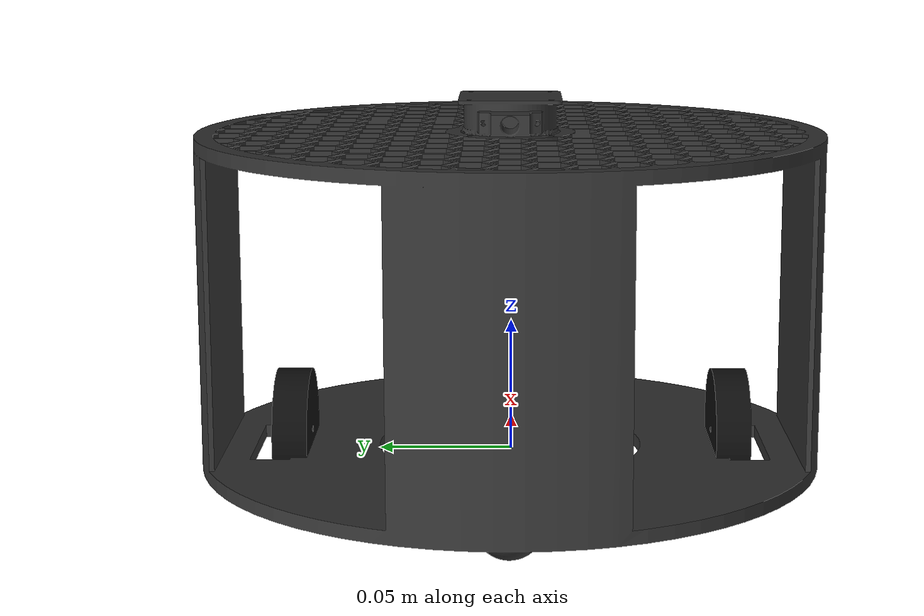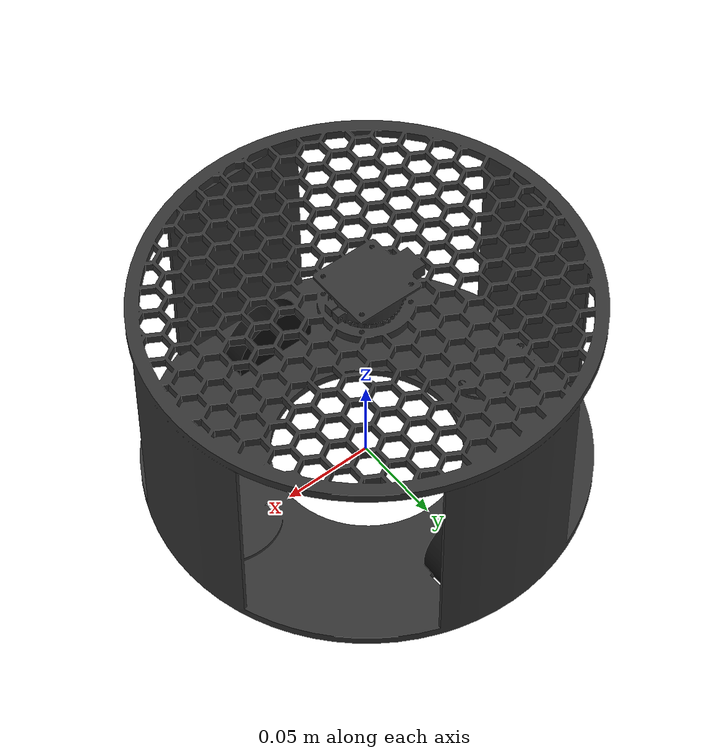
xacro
<?xml version="1.0"?>
<robot name="raf4" xmlns:xacro="http://www.ros.org/wiki/xacro">

  <xacro:property name="chassis_yaw" value="${pi/2}"/>

  <!-- ===================== Posição das rodas motrizes ===================== -->
  <!-- Assume-se que estes valores são o CENTRO da roda (o cavado no chassis
       vai de x≈50 a x≈116 mm e o seu ponto médio bate com ≈83 mm). -->
  <xacro:property name="right_wheel_x" value="0.00021"/>
  <xacro:property name="right_wheel_y" value="-0.08316"/>
  <xacro:property name="right_wheel_z" value="0.00720"/>

  <xacro:property name="left_wheel_x" value="0.00030"/>
  <xacro:property name="left_wheel_y" value="0.08279"/>
  <xacro:property name="left_wheel_z" value="0.00720"/>

  <!-- Distância entre rodas: usada também pelo DiffDrive (não hardcoded) -->
  <xacro:property name="wheel_separation" value="${left_wheel_y - right_wheel_y}"/>

  <xacro:property name="wheel_radius" value="0.0235"/>
  <xacro:property name="wheel_width" value="0.013"/>
  <xacro:property name="wheel_visual_shift" value="${wheel_width/2}"/>
  <xacro:property name="wheel_mass" value="0.05"/>  <!-- PESA A RODA REAL -->

  <!-- Rodas-guia: esferas perfeitas (raio 12.5 mm) na malha do chassis -->
  <xacro:property name="caster_radius" value="0.0125"/>
  <xacro:property name="caster_z" value="-0.00378"/>

  <!-- Massa do robô. 1.0 kg é um PLACEHOLDER: PESA O ROBÔ REAL. A inércia e
       o centro de massa abaixo vêm da malha (densidade uniforme) e escalam
       com esta massa. -->
  <xacro:property name="base_mass" value="1.0"/>

  <link name="base_link">
    <visual>
      <origin xyz="0 0 0" rpy="0 0 ${chassis_yaw}"/>
      <geometry>
        <mesh filename="package://raf4_description/meshes/raf4.stl" scale="0.001 0.001 0.001"/>
      </geometry>
      <material name="chassis_color">
        <color rgba="0.2 0.2 0.2 1"/>
      </material>
    </visual>
    <!-- Colisão do corpo = caixa (a malha tem 25k triângulos). O fundo do
         corpo está a z=-2.8 mm, logo NÃO toca no chão: quem toca são as
         rodas e as guias. -->
    <collision>
      <origin xyz="-0.000305 0.00029 0.0663" rpy="0 0 0"/>
      <geometry>
        <box size="0.23379 0.23412 0.13817"/>
      </geometry>
    </collision>
    <inertial>
      <origin xyz="-0.00035 0.00033 0.0495" rpy="0 0 0"/>
      <mass value="${base_mass}"/>
      <inertia ixx="${base_mass * 0.00728}" ixy="0.0" ixz="0.0"
               iyy="${base_mass * 0.00753}" iyz="0.0"
               izz="${base_mass * 0.01014}"/>
    </inertial>
  </link>

  <!-- ===================== Rodas-guia (sem atrito) ===================== -->
  <xacro:macro name="caster" params="name x y">
    <link name="${name}_link">
      <collision>
        <geometry>
          <sphere radius="${caster_radius}"/>
        </geometry>
      </collision>
    </link>
    <joint name="${name}_joint" type="fixed">
      <parent link="base_link"/>
      <child link="${name}_link"/>
      <origin xyz="${x} ${y} ${caster_z}" rpy="0 0 0"/>
    </joint>
    <!-- esfera "de bola": quase sem atrito, senão trava o robô -->
    <gazebo reference="${name}_link">
      <mu1>0.01</mu1>
      <mu2>0.01</mu2>
    </gazebo>
  </xacro:macro>

  <xacro:caster name="caster_front" x="0.08321"  y="0.00035"/>
  <xacro:caster name="caster_rear"  x="-0.08379" y="0.00035"/>

  <!-- ===================== Macro da roda motriz ===================== -->
  <!-- visual_yaw/visual_dy: a malha ocupa y∈[-13,0]; a roda direita já
       aponta para fora (-Y), a esquerda roda-se 180°. -->
  <xacro:macro name="wheel" params="prefix x y z visual_yaw visual_dy">
    <link name="${prefix}_wheel_link">
      <visual>
        <origin xyz="0 ${visual_dy} 0" rpy="0 0 ${visual_yaw}"/>
        <geometry>
          <mesh filename="package://raf4_description/meshes/roda.stl" scale="0.001 0.001 0.001"/>
        </geometry>
        <material name="wheel_color">
          <color rgba="0.05 0.05 0.05 1"/>
        </material>
      </visual>
      <collision>
        <!-- Cilindro com eixo em Y, centrado no joint -->
        <origin xyz="0 0 0" rpy="${pi/2} 0 0"/>
        <geometry>
          <cylinder radius="${wheel_radius}" length="${wheel_width}"/>
        </geometry>
      </collision>
      <inertial>
        <!-- cilindro maciço com eixo em Y -->
        <mass value="${wheel_mass}"/>
        <inertia ixx="${wheel_mass * (3*wheel_radius*wheel_radius + wheel_width*wheel_width) / 12}" ixy="0.0" ixz="0.0"
                 iyy="${0.5 * wheel_mass * wheel_radius * wheel_radius}" iyz="0.0"
                 izz="${wheel_mass * (3*wheel_radius*wheel_radius + wheel_width*wheel_width) / 12}"/>
      </inertial>
    </link>

    <joint name="${prefix}_wheel_joint" type="continuous">
      <parent link="base_link"/>
      <child link="${prefix}_wheel_link"/>
      <origin xyz="${x} ${y} ${z}" rpy="0 0 0"/>
      <!-- Eixo lateral (Y): rotação positiva das duas rodas => avança em +X -->
      <axis xyz="0 1 0"/>
    </joint>

    <gazebo reference="${prefix}_wheel_link">
      <mu1>1.0</mu1>
      <mu2>1.0</mu2>
    </gazebo>
  </xacro:macro>

  <xacro:wheel prefix="right" x="${right_wheel_x}" y="${right_wheel_y}" z="${right_wheel_z}"
               visual_yaw="0" visual_dy="${wheel_visual_shift}"/>
  <xacro:wheel prefix="left"  x="${left_wheel_x}"  y="${left_wheel_y}"  z="${left_wheel_z}"
               visual_yaw="${pi}" visual_dy="${-wheel_visual_shift}"/>

  <!-- Link do IMU (sem geometria visual, é só um referencial). Mesmo
       referencial que base_link: X à frente, Y esquerda, Z cima. -->
  <link name="imu_link"/>

  <joint name="imu_joint" type="fixed">
    <parent link="base_link"/>
    <child link="imu_link"/>
    <origin xyz="0 0 0.05" rpy="0 0 0"/>
  </joint>

  <gazebo reference="imu_link">
    <sensor name="imu_sensor" type="imu">
      <always_on>true</always_on>
      <update_rate>100</update_rate>  <!-- accel/gyro a 100 Hz em modo NDOF -->
      <topic>imu/data</topic>
      <gz_frame_id>imu_link</gz_frame_id>
      <imu>
        <angular_velocity>
          <!-- Gyro BW=32Hz: 0.014 °/s/√Hz * √32 ≈ 0.079°/s = 0.0014 rad/s.
               Zero-rate offset típico ±1°/s = 0.0175 rad/s (datasheet). -->
          <x><noise type="gaussian"><mean>0.0</mean><stddev>0.0014</stddev><bias_mean>0.0</bias_mean><bias_stddev>0.0175</bias_stddev></noise></x>
          <y><noise type="gaussian"><mean>0.0</mean><stddev>0.0014</stddev><bias_mean>0.0</bias_mean><bias_stddev>0.0175</bias_stddev></noise></y>
          <z><noise type="gaussian"><mean>0.0</mean><stddev>0.0014</stddev><bias_mean>0.0</bias_mean><bias_stddev>0.0175</bias_stddev></noise></z>
        </angular_velocity>
        <linear_acceleration>
          <x><noise type="gaussian"><mean>0.0</mean><stddev>0.0116</stddev><bias_mean>0.0</bias_mean><bias_stddev>0.1</bias_stddev></noise></x>
          <y><noise type="gaussian"><mean>0.0</mean><stddev>0.0116</stddev><bias_mean>0.0</bias_mean><bias_stddev>0.1</bias_stddev></noise></y>
          <z><noise type="gaussian"><mean>0.0</mean><stddev>0.0116</stddev><bias_mean>0.0</bias_mean><bias_stddev>0.1</bias_stddev></noise></z>
        </linear_acceleration>
      </imu>
    </sensor>

    <!-- Magnetómetro a 20 Hz em NDOF. Ruído "Regular preset": 0.6 µT.
         Zero-B offset: ±40 µT em bruto, ±2 µT após calibração em fusão
         (datasheet) -> bias_stddev = 2 µT. -->
    <sensor name="mag_sensor" type="magnetometer">
      <always_on>true</always_on>
      <update_rate>20</update_rate>
      <topic>imu/mag</topic>
      <gz_frame_id>imu_link</gz_frame_id>
      <magnetometer>
        <x><noise type="gaussian"><mean>0.0</mean><stddev>0.0000006</stddev><bias_mean>0.0</bias_mean><bias_stddev>0.000002</bias_stddev></noise></x>
        <y><noise type="gaussian"><mean>0.0</mean><stddev>0.0000006</stddev><bias_mean>0.0</bias_mean><bias_stddev>0.000002</bias_stddev></noise></y>
        <z><noise type="gaussian"><mean>0.0</mean><stddev>0.0000006</stddev><bias_mean>0.0</bias_mean><bias_stddev>0.000002</bias_stddev></noise></z>
      </magnetometer>
    </sensor>
  </gazebo>

  <!-- ===================== Controlador de tração (DiffDrive) ===================== -->
  <gazebo>
    <plugin filename="gz-sim-diff-drive-system" name="gz::sim::systems::DiffDrive">
      <left_joint>left_wheel_joint</left_joint>
      <right_joint>right_wheel_joint</right_joint>
      <wheel_separation>${wheel_separation}</wheel_separation>
      <wheel_radius>${wheel_radius}</wheel_radius>
      <odom_publish_frequency>50</odom_publish_frequency>
      <topic>cmd_vel</topic>
      <odom_topic>odom</odom_topic>
      <tf_topic>tf</tf_topic>
      <frame_id>odom</frame_id>
      <child_frame_id>base_link</child_frame_id>
      <min_linear_velocity>-0.40</min_linear_velocity>
      <max_linear_velocity>0.40</max_linear_velocity>
      <min_angular_velocity>-4.0</min_angular_velocity>
      <max_angular_velocity>4.0</max_angular_velocity>
      <min_linear_acceleration>-1.5</min_linear_acceleration>
      <max_linear_acceleration>1.5</max_linear_acceleration>
      <min_angular_acceleration>-10.0</min_angular_acceleration>
      <max_angular_acceleration>10.0</max_angular_acceleration>
    </plugin>
  </gazebo>

  <gazebo>
    <plugin filename="gz-sim-joint-state-publisher-system" name="gz::sim::systems::JointStatePublisher">
      <topic>joint_states</topic>
      <joint_name>left_wheel_joint</joint_name>
      <joint_name>right_wheel_joint</joint_name>
    </plugin>
  </gazebo>

</robot>
